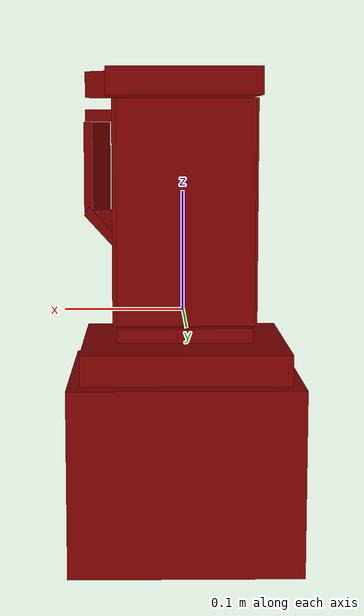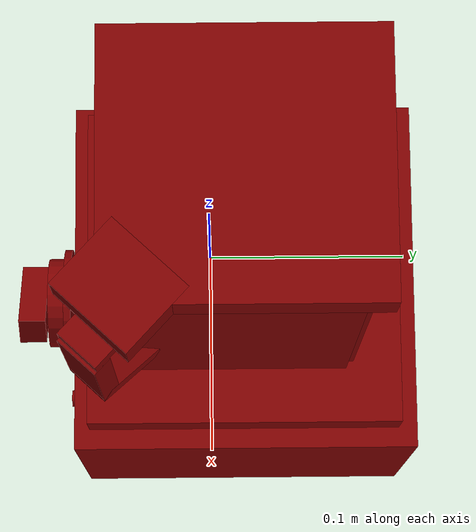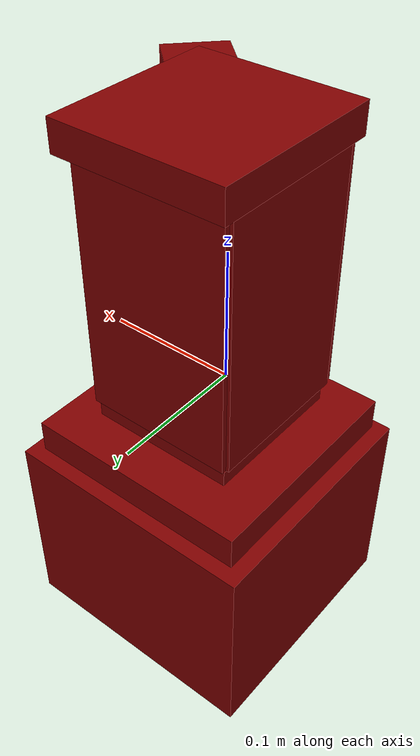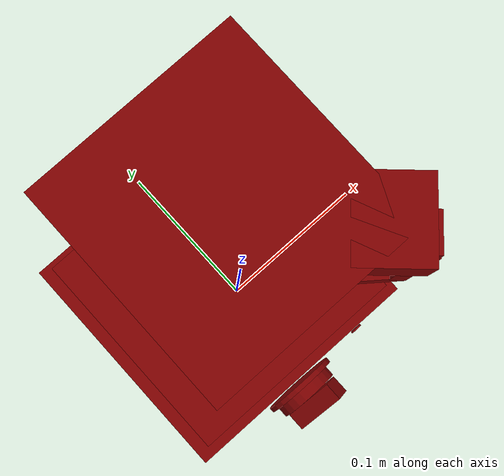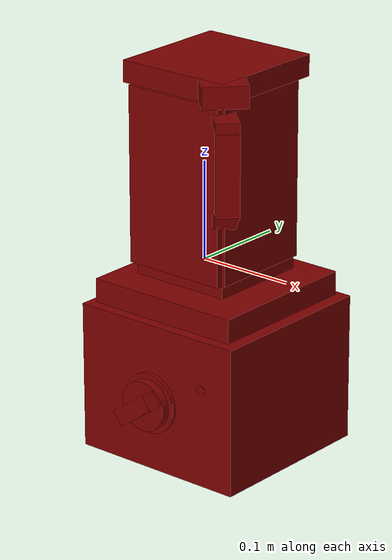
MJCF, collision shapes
<?xml version='1.0' encoding='UTF-8'?>
<mujoco model="model">
  <option timestep="0.002" gravity="0.0 0.0 -9.81"/>
  <compiler angle="radian"/>
  <asset>
    <mesh file="visuals/Blade001.obj" name="Blade001_vis"/>
    <mesh file="visuals/Body001.obj" name="Body001_vis"/>
    <mesh file="visuals/Button001.obj" name="Button001_vis"/>
    <mesh file="visuals/Jug001.obj" name="Jug001_vis"/>
    <mesh file="visuals/Jug001_Clear.obj" name="Jug001_Clear_vis"/>
    <mesh file="visuals/Knob001.obj" name="Knob001_vis"/>
    <mesh file="visuals/Lid001.obj" name="Lid001_vis"/>
    <texture file="visuals/T_BC001.png" name="Body001_material" type="2d"/>
    <material name="Body001_material" rgba="1 1 1 1.0" texture="Body001_material" shininess="0.1" specular="1"/>
    <texture file="visuals/T_BC001.png" name="Button001_material" type="2d"/>
    <material name="Button001_material" rgba="1 1 1 1.0" texture="Button001_material" shininess="0.5" specular="0.33333333333333337"/>
    <texture file="visuals/T_BC001.png" name="Jug001_Clear_material" type="2d"/>
    <material name="Jug001_Clear_material" rgba="1 1 1 0.800000011920929" texture="Jug001_Clear_material" shininess="0.5" specular="0.33333333333333337"/>
    <texture file="visuals/T_BC001.png" name="Blade001_material" type="2d"/>
    <material name="Blade001_material" rgba="1 1 1 1.0" texture="Blade001_material" shininess="0.5" specular="0.33333333333333337"/>
    <texture file="visuals/T_BC001.png" name="Jug001_material" type="2d"/>
    <material name="Jug001_material" rgba="1 1 1 1.0" texture="Jug001_material" shininess="0.5" specular="0.33333333333333337"/>
    <texture file="visuals/T_BC001.png" name="Lid001_material" type="2d"/>
    <material name="Lid001_material" rgba="1 1 1 1.0" texture="Lid001_material" shininess="0.5" specular="0.33333333333333337"/>
    <texture file="visuals/T_BC001.png" name="Knob001_material" type="2d"/>
    <material name="Knob001_material" rgba="1 1 1 1.0" texture="Knob001_material" shininess="0.5" specular="0.33333333333333337"/>
  </asset>
  <default>
    <default class="visual">
      <geom conaffinity="0" contype="0" group="1" type="mesh"/>
    </default>
    <default class="collision">
      <geom group="0" rgba="0.5 0 0 0.5"/>
    </default>
    <default class="spawn">
      <geom group="0" rgba="1 1 1 0.5" contype="0" conaffinity="0"/>
      <site group="0" rgba="1 1 1 0.5"/>
    </default>
    <default class="region">
      <geom group="1" conaffinity="0" contype="0" rgba="0 1 0 0"/>
    </default>
  </default>
  <worldbody>
    <body>
      <body name="object">
        <geom mesh="Body001_vis" type="mesh" solimp="0.998 0.998 0.001" solref="0.001 1" friction="0.95 0.3 0.1" class="visual" material="Body001_material"/>
        <geom class="collision" type="box" pos="-0.00042898 0.01830716 -0.12426873" size="0.0940425768494606 0.09188991039991379 0.07564316689968109" quat="1.0 0.0 0.0 0.0"/>
        <geom class="collision" type="box" pos="-0.00042898 0.01738636 -0.03463487" size="0.08369243144989014 0.08266597986221313 0.012235645204782486" quat="1.0 0.0 0.0 0.0"/>
        <body name="Button001">
          <joint axis="0.0 1.0 0.0" pos="0.05931747 -0.07316400 -0.09676713" limited="true" name="Button001_joint" range="0.0 0.001" type="slide" damping="1" frictionloss="1" armature=".01" stiffness="0.05"/>
          <geom mesh="Button001_vis" type="mesh" solimp="0.998 0.998 0.001" solref="0.001 1" friction="0.95 0.3 0.1" class="visual" material="Button001_material"/>
          <geom class="collision" type="cylinder" pos="0.05927947 -0.07713775 -0.09667044" size="0.004644408356398344 0.0007194741046987474" quat="0.7071067094802856 -0.7071068286895752 -1.5700929612083792e-16 -2.2148510003422914e-23"/>
        </body>
        <body name="Jug001_Clear">
          <geom class="region" name="reg_int" type="box" pos="0.00018839000000000009 0.015978930000000002 0.09216845500000001" size="0.04384351 0.04165795 0.055798025"/>
          <joint axis="0.0 0.0 1.0" pos="0.00654325 0.01054829 0.08933709" limited="true" name="Jug001_Clear_joint" range="0.0 0.05" type="slide" damping="1" frictionloss="1" armature=".01" stiffness="0.05"/>
          <geom mesh="Jug001_Clear_vis" type="mesh" solimp="0.998 0.998 0.001" solref="0.001 1" friction="0.95 0.3 0.1" class="visual" material="Jug001_Clear_material"/>
          <geom class="collision" type="box" pos="0.06211698 -0.04456136 0.16299413" size="0.011408685706555843 0.01944798044860363 0.005156984087079763" quat="0.9165320992469788 0.0 0.0 0.3999611437320709"/>
          <geom class="collision" type="box" pos="0.07395798 -0.05521826 0.11783241" size="0.011408684775233269 0.005029662046581507 0.03966490179300308" quat="0.9165320992469788 0.0 0.0 0.3999611437320709"/>
          <geom class="collision" type="box" pos="0.06330109 -0.04519241 0.06830074" size="0.011408684775233269 0.005029662046581507 0.020796068012714386" quat="0.8157005906105042 0.41792792081832886 0.18237754702568054 0.3559596538543701"/>
          <geom class="collision" type="box" pos="-0.00042898 -0.04283430 0.08634938" size="0.05482516810297966 0.0036661962512880564 0.08966851234436035" quat="1.0 0.0 0.0 0.0"/>
          <geom class="collision" type="box" pos="-0.00042898 0.06977503 0.08634938" size="0.054825201630592346 0.0036661962512880564 0.08966861665248871" quat="1.0 0.0 0.0 0.0"/>
          <geom class="collision" type="box" pos="-0.05397190 0.01487471 0.08634938" size="0.00366619392298162 0.0548253133893013 0.08966869860887527" quat="1.0 0.0 0.0 0.0"/>
          <geom class="collision" type="box" pos="0.05420230 0.01487471 0.08634938" size="0.0036661967169493437 0.0548253133893013 0.08966878056526184" quat="1.0 0.0 0.0 0.0"/>
          <geom class="collision" type="box" pos="-0.00042898 0.01470796 -0.00167079" size="0.05482529103755951 0.054755423218011856 0.0027474777307361364" quat="1.0 0.0 0.0 0.0"/>
          <body name="Blade001">
            <joint axis="0.0 0.0 1.0" pos="-0.00080093 0.01657741 0.01626471" limited="false" name="Blade001_joint" range="0 360" type="hinge" damping="1" frictionloss="1" armature=".01" stiffness="0.05"/>
            <geom mesh="Blade001_vis" type="mesh" solimp="0.998 0.998 0.001" solref="0.001 1" friction="0.95 0.3 0.1" class="visual" material="Blade001_material"/>
            <geom class="collision" type="cylinder" pos="-0.00076259 0.01659068 0.01732909" size="0.008968064561486244 0.01291128620505333" quat="1.0 0.0 0.0 0.0"/>
            <geom class="collision" type="box" pos="-0.00581280 0.00452992 0.01276770" size="0.003935224376618862 0.006382464896887541 0.0007913180743344128" quat="0.8590430617332458 0.497831791639328 -0.05976736545562744 -0.10313273966312408"/>
            <geom class="collision" type="box" pos="-0.01041935 -0.00741227 0.00744018" size="0.0034937355667352676 0.009759597480297089 0.0007913181325420737" quat="0.9872918128967285 0.0 -0.0 -0.15891800820827484"/>
            <geom class="collision" type="box" pos="0.00393238 0.02946151 0.01276770" size="0.003935224376618862 0.006382465828210115 0.0007913180743344128" quat="0.10313277691602707 0.05976737663149834 0.49783167243003845 0.8590431213378906"/>
            <geom class="collision" type="box" pos="0.00853893 0.04140369 0.00744018" size="0.0034937355667352676 0.009759597480297089 0.0007913181325420737" quat="0.158918097615242 0.0 0.0 0.9872917532920837"/>
            <geom class="collision" type="box" pos="0.01117086 0.01255952 0.01737689" size="0.003935224376618862 0.006382464896887541 0.0007913180743344128" quat="0.819078803062439 0.0 0.0 0.5736810564994812"/>
            <geom class="collision" type="box" pos="0.02087990 0.00881369 0.02663890" size="0.0034937357995659113 0.009759597480297089 0.0007913180743344128" quat="0.6929638385772705 -0.45357760787010193 -0.3069186508655548 0.4689023196697235"/>
            <geom class="collision" type="box" pos="-0.01271869 0.02094228 0.01763733" size="0.003935224376618862 0.006382465362548828 0.0007913180743344128" quat="0.573681116104126 0.0 -0.0 -0.8190787434577942"/>
            <geom class="collision" type="box" pos="-0.02242772 0.02468811 0.02689934" size="0.0034937355667352676 0.009759597480297089 0.0007913181325420737" quat="0.4689021706581116 -0.3069183826446533 0.4535774290561676 -0.6929641962051392"/>
          </body>
          <body name="Jug001">
            <geom mesh="Jug001_vis" type="mesh" solimp="0.998 0.998 0.001" solref="0.001 1" friction="0.95 0.3 0.1" class="visual" material="Jug001_material"/>
            <geom class="collision" type="box" pos="0.06211698 -0.04456136 0.16299413" size="0.011408685706555843 0.01944798044860363 0.005156984087079763" quat="0.9165320992469788 0.0 0.0 0.3999611437320709"/>
            <geom class="collision" type="box" pos="0.07395798 -0.05521826 0.11783241" size="0.011408684775233269 0.005029662046581507 0.03966490179300308" quat="0.9165320992469788 0.0 0.0 0.3999611437320709"/>
            <geom class="collision" type="box" pos="0.06330109 -0.04519241 0.06830074" size="0.011408684775233269 0.005029662046581507 0.020796068012714386" quat="0.8157005906105042 0.41792792081832886 0.18237754702568054 0.3559596538543701"/>
            <geom class="collision" type="box" pos="-0.00042898 -0.04283430 0.08634938" size="0.05482516810297966 0.0036661962512880564 0.08966851234436035" quat="1.0 0.0 0.0 0.0"/>
            <geom class="collision" type="box" pos="-0.00042898 0.06977503 0.08634938" size="0.054825201630592346 0.0036661962512880564 0.08966861665248871" quat="1.0 0.0 0.0 0.0"/>
            <geom class="collision" type="box" pos="-0.05397190 0.01487471 0.08634938" size="0.00366619392298162 0.0548253133893013 0.08966869860887527" quat="1.0 0.0 0.0 0.0"/>
            <geom class="collision" type="box" pos="0.05420230 0.01487471 0.08634938" size="0.0036661967169493437 0.0548253133893013 0.08966878056526184" quat="1.0 0.0 0.0 0.0"/>
            <geom class="collision" type="box" pos="-0.00042898 0.01620540 -0.01168829" size="0.05380856990814209 0.054080430418252945 0.005756262689828873" quat="1.0 0.0 0.0 0.0"/>
            <geom class="collision" type="box" pos="-0.00042898 0.01470796 -0.00167079" size="0.05482529103755951 0.054755423218011856 0.0027474777307361364" quat="1.0 0.0 0.0 0.0"/>
          </body>
          <body name="Lid001">
            <joint axis="0.0 0.0 1.0" pos="0.00642554 0.01081312 0.17483791" limited="true" name="Lid001_joint" range="0.0 0.05" type="slide" damping="1" frictionloss="1" armature=".01" stiffness="0.05"/>
            <geom mesh="Lid001_vis" type="mesh" solimp="0.998 0.998 0.001" solref="0.001 1" friction="0.95 0.3 0.1" class="visual" material="Lid001_material"/>
            <geom class="collision" type="box" pos="0.00100590 0.01606249 0.18920675" size="0.06147725507616997 0.06424625962972641 0.011045503430068493" quat="1.0 0.0 0.0 0.0"/>
            <geom class="collision" type="box" pos="0.05382828 -0.03775279 0.18920675" size="0.02223295532166958 0.01944798417389393 0.011045503430068493" quat="0.9165320992469788 0.0 0.0 0.3999611437320709"/>
          </body>
        </body>
        <body name="Knob001">
          <joint axis="0.0 1.0000001192092896 0.0" pos="-0.00086133 -0.09274757 -0.12523099" limited="true" name="Knob001_joint" range="0.0 2.792526803190927" type="hinge" damping="0.001" frictionloss="0.1" armature="0.001"/>
          <geom mesh="Knob001_vis" type="mesh" solimp="0.998 0.998 0.001" solref="0.001 1" friction="0.95 0.3 0.1" class="visual" material="Knob001_material"/>
          <geom class="collision" type="cylinder" pos="-0.00072560 -0.08815067 -0.12543755" size="0.02554130367934704 0.004874738398939371" quat="0.7071067094802856 -0.7071068286895752 -1.5700929612083792e-16 -2.2148510003422914e-23"/>
          <geom class="collision" type="cylinder" pos="-0.00072560 -0.08172491 -0.12543755" size="0.03092319332063198 0.0020769285038113594" quat="0.7071067094802856 -0.7071068286895752 -1.5700929612083792e-16 -2.2148510003422914e-23"/>
          <geom class="collision" type="box" pos="0.00001300 -0.10210387 -0.12435240" size="0.02245170623064041 0.0076528736390173435 0.008579360321164131" quat="0.9537169337272644 0.0 -0.30070576071739197 0.0"/>
        </body>
        <geom class="region" name="reg_main" type="box" pos="6.000000000311312e-08 0.0144993 -6.499999999354245e-08" size="0.09820691000000001 0.09540155 0.201541105"/>
      </body>
    </body>
  </worldbody>
  <actuator>
    <motor name="Button001_joint_actuator" joint="Button001_joint" gear="0.1"/>
    <motor name="Jug001_Clear_joint_actuator" joint="Jug001_Clear_joint" gear="200"/>
    <motor name="Knob001_joint_actuator" joint="Knob001_joint" gear="10"/>
    <motor name="Blade001_joint_actuator" joint="Blade001_joint" gear="10"/>
    <motor name="Lid001_joint_actuator" joint="Lid001_joint" gear="20"/>
  </actuator>
</mujoco>
